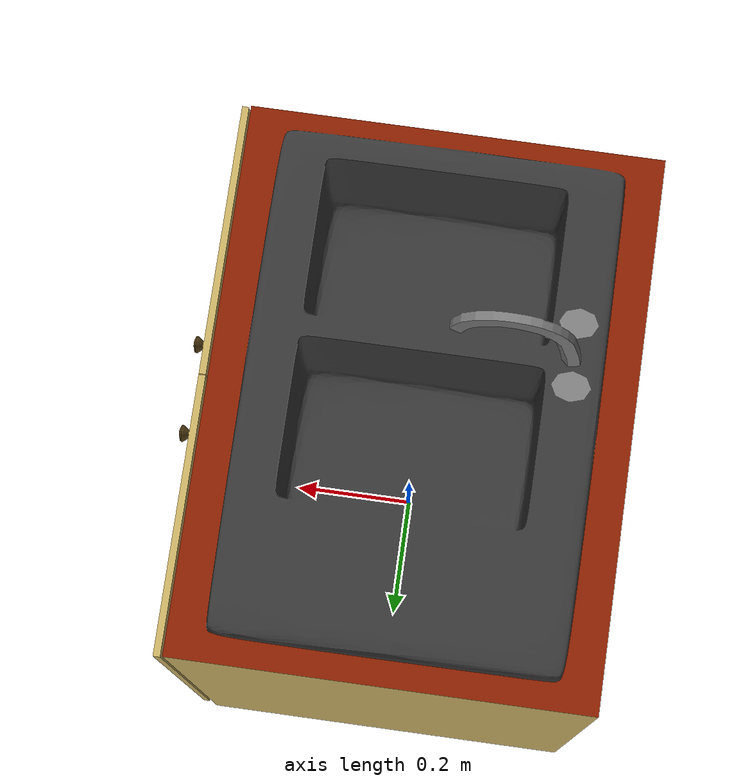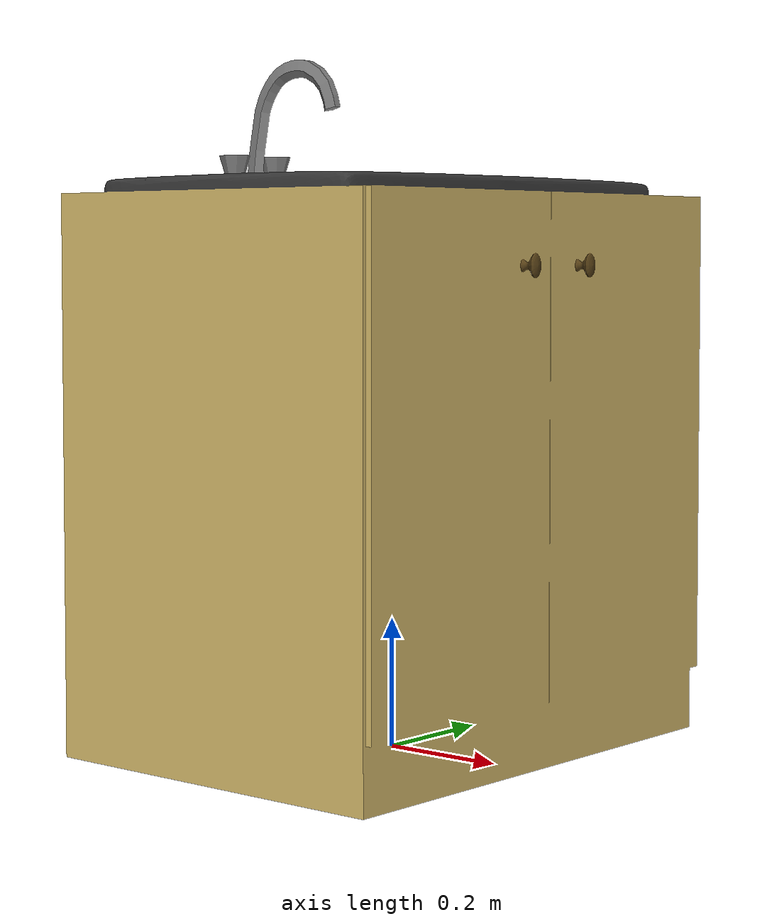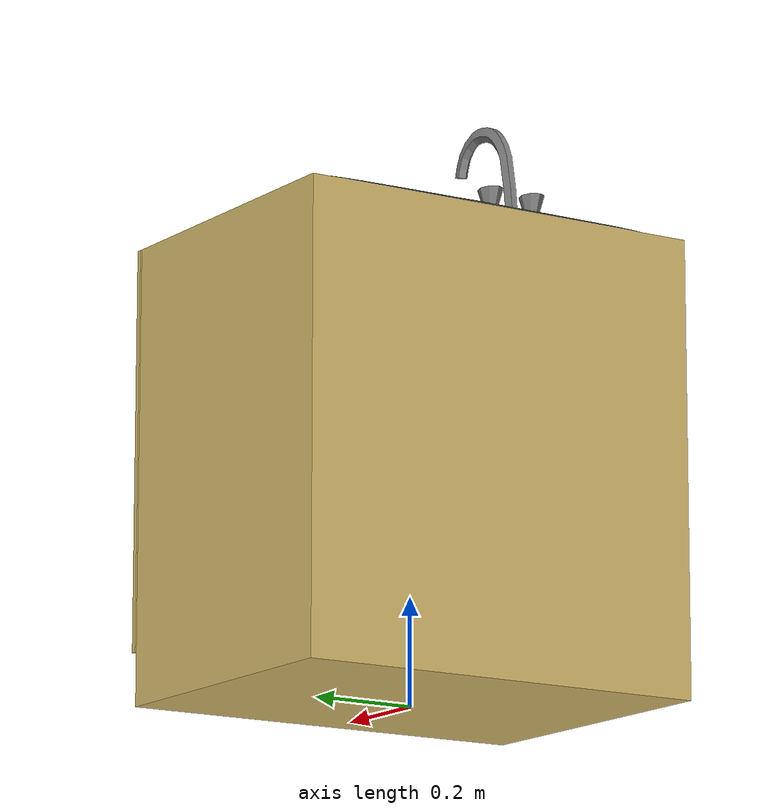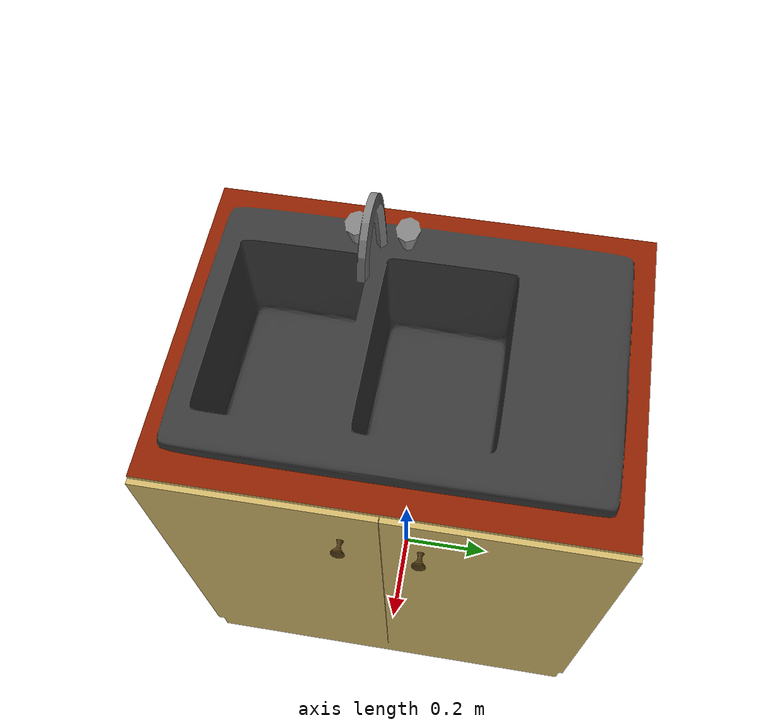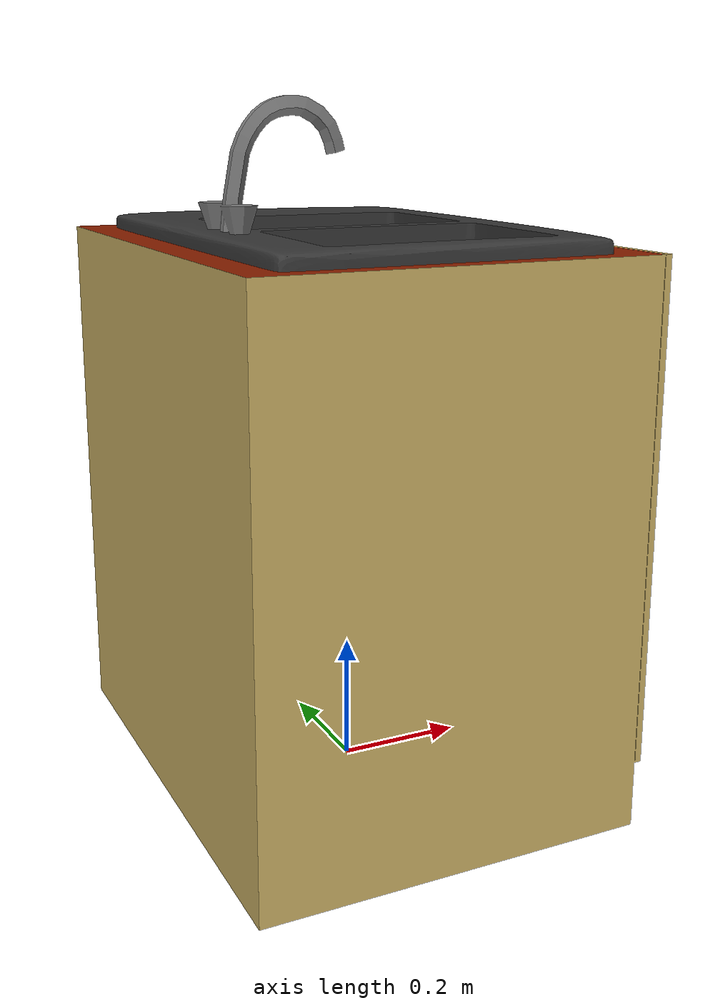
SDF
<?xml version="1.0" ?>
<sdf version="1.0">
  <model name="sink">
    <static>true</static>
    <link name="sink">
      <collision name="sink">
        <pose>0 0 0.4398 0 0 0</pose>
        <geometry>
          <box>
            <size>0.64 0.8 0.8796</size>
          </box>
        </geometry>
      </collision>

      <collision name="tap">
        <pose>-0.1500 -0.0775 0.9746 0 0 0</pose>
        <geometry>
          <box>
            <size>0.2200 0.1300 0.1900</size>
          </box>
        </geometry>
      </collision>

      <visual name="sink_mesh">
	  <cast_shadows>true</cast_shadows>
        <geometry>
          <mesh>
	        <uri>model://sink/meshes/model.dae</uri>
	      </mesh>
        </geometry>
      </visual>
    </link>
  </model>
</sdf>
